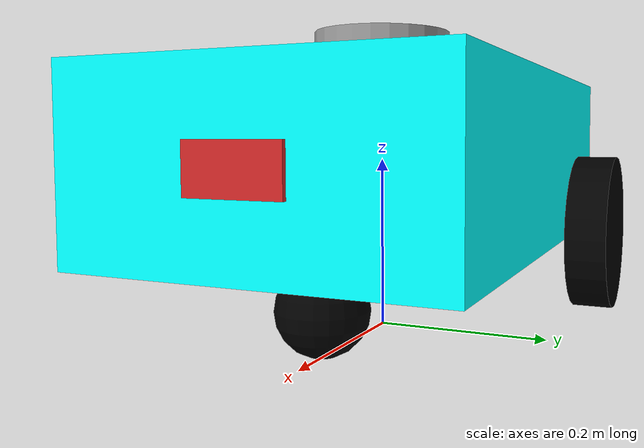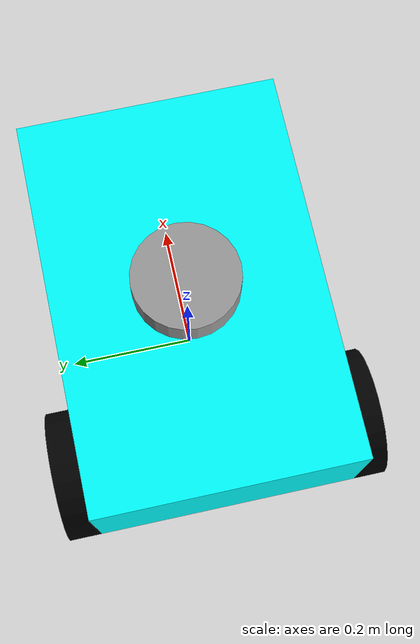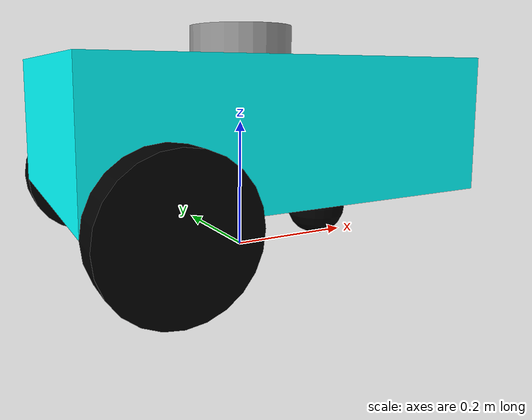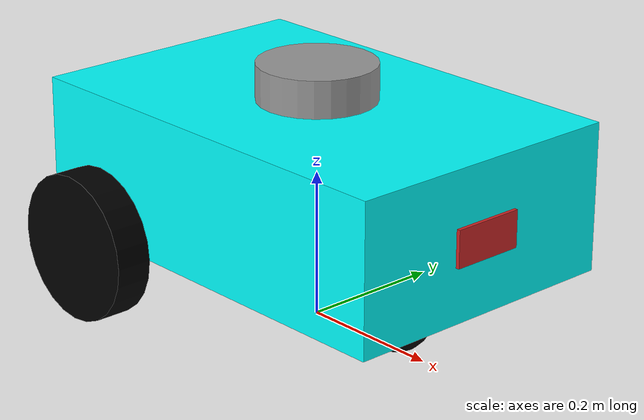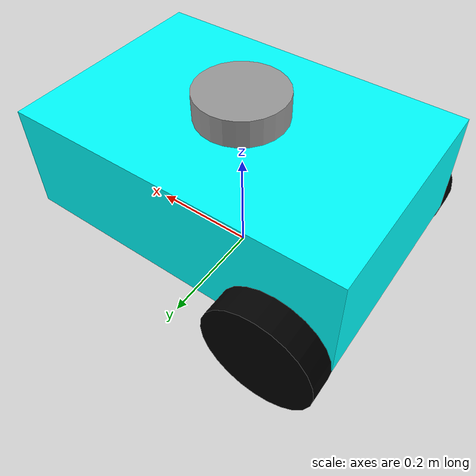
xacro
<?xml version="1.0"?>
<robot name="my_robot" xmlns:xacro = "http://www.ros.org/wiki/xacro" > <!-- xmlns:xacro = "http://www.ros.org/wiki/xacro>" kısmı xacro kullanabilmek için.-->

    <xacro:include filename="properties.xacro"/>
    <xacro:include filename="properties_gazebo.xacro"/>
    <xacro:include filename="camera.xacro"/>
    <xacro:include filename="lidar.xacro"/>
    <xacro:include filename="my_robot.xacro"/>

    <gazebo>
      <plugin name="gazebo_ros2_control" filename="libgazebo_ros2_control.so">
        <robot_param>robot_description</robot_param>
        <robot_param_node>robot_state_publisher</robot_param_node>
      </plugin>
    </gazebo>
</robot>

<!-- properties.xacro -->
<robot name="my_robot" xmlns:xacro = "http://www.ros.org/wiki/xacro" > <!-- xmlns:xacro = "http://www.ros.org/wiki/xacro>" kısmı xacro kullanabilmek için.-->

<material name="cyan">
        <color rgba="0 1 1 1"/>
    </material>
    <material name="black">
        <color rgba="0 0 0 1"/>
    </material>

</robot>

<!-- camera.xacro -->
<robot name="my_robot" xmlns:xacro = "http://www.ros.org/wiki/xacro" > <!-- xmlns:xacro = "http://www.ros.org/wiki/xacro>" kısmı xacro kullanabilmek için.-->

    <!-- === Fiziksel Parametreler === -->
    <xacro:property name="camera_width" value="0.01" />
    <xacro:property name="camera_lenght" value="0.1" />
    <xacro:property name="camera_height" value="0.05" />
    <xacro:property name="camera_mass" value="0.5" />

    <!-- === Atalet Momentleri (İnertial) Hesaplamaları === -->
    <!-- Dikdörtgen prizma için (camera) -->
    <xacro:property name="camera_ixx" value="${(1/12.0)*camera_mass*(camera_height*camera_height + camera_lenght*camera_lenght)}" />
    <xacro:property name="camera_iyy" value="${(1/12.0)*camera_mass*(camera_width*camera_width + camera_height*camera_height)}" />
    <xacro:property name="camera_izz" value="${(1/12.0)*camera_mass*(camera_width*camera_width + camera_lenght*camera_lenght)}" />

    <link name="camera_link">

        <inertial>
            <mass value="${camera_mass}" />
                <inertia ixx="${camera_ixx}" ixy="0.0" ixz="0.0" iyy="${camera_iyy}" iyz="0.0" izz="${camera_izz}" />
        </inertial>

        <visual>
            <geometry>
                <box size="${camera_width} ${camera_lenght} ${camera_height}"/>
            </geometry>
            <origin xyz="0.0 0.0 0.0" rpy="0.0 0.0 0.0"/>
            <material name="red" />
        </visual>

        <collision>
            <geometry>
                <box size="${camera_width} ${camera_lenght} ${camera_height}"/>
            </geometry>
            <origin xyz="0.0 0.0 0.0" rpy="0.0 0.0 0.0"/>
        </collision>

    </link>"

    <joint name="base_camera_joint" type="fixed">
        <parent link="base_link"/>
        <child link="camera_link"/>
        <origin xyz="0.3 0 0" rpy="0.0 0.0 0.0"/>
    </joint>

    <!--Şimdi eklediğimiz nesnenin kamera olduğunu gazeboya bildireceğiz.-->
    <gazebo reference = "camera_link">
        <material>Gazebo/Grey</material>
        <sensor name = "camera_sensor" type = "camera">
            <pose>0 0 0 0 0 0</pose> <!--x y z r p y değerlerini belirttik-->
            <visualize>true</visualize> <!--Çıktı görüp görmek istemediğimizi belirtiyoruz.-->
            <update_rate>10.0</update_rate> <!-- Kameranın güncellenme oranını ifade eder.-->

            <!--Default  Tanımlamalar.-->
            <plugin name = "camera_controller" filename = "libgazebo_ros_camera.so">
                <frame_name>camera_link</frame_name>
            </plugin>
        </sensor>

    </gazebo>
</robot>

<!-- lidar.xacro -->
<robot name="my_robot" xmlns:xacro = "http://www.ros.org/wiki/xacro" > <!-- xmlns:xacro = "http://www.ros.org/wiki/xacro>" kısmı xacro kullanabilmek için.-->

    <!-- === Fiziksel Parametreler === -->
    <xacro:property name="base_height" value="0.2" />

    <xacro:property name="lidar_radius" value="0.08" />
    <xacro:property name="lidar_lenght" value="0.05" />
    <xacro:property name="lidar_mass" value="0.2" />

    <!-- === Atalet Momentleri (İnertial) Hesaplamaları === -->
    <!-- Silindir için (lidar) -->
    <xacro:property name="lidar_ixx" value="${(1/12.0)*lidar_mass*(3*lidar_radius*lidar_radius + lidar_lenght*lidar_lenght)}" />
    <xacro:property name="lidar_iyy" value="${0.5*lidar_mass*lidar_radius*lidar_radius}" />
    <xacro:property name="lidar_izz" value="${(1/12.0)*lidar_mass*(3*lidar_radius*lidar_radius + lidar_lenght*lidar_lenght)}" />

    <link name="lidar_link">
        <inertial>
            <mass value="${lidar_mass}" />
            <inertia
                ixx="${lidar_ixx}" ixy="0.0" ixz="0.0"
                iyy="${lidar_iyy}" iyz="0.0" izz="${lidar_izz}" />
        </inertial>
        <visual>
            <geometry>
                <cylinder radius="${lidar_radius}" length="${lidar_lenght}"/>
            </geometry>
            <origin xyz="0.0 0.0 0.0" rpy="0 0.0  0.0"/>
            <material name="gray" />
        </visual>
        <collision>
            <geometry>
                <cylinder radius="${lidar_radius}" length="${lidar_lenght}"/>
            </geometry>
            <origin xyz="0.0 0.0 0.0" rpy="0 0.0  0.0"/>
        </collision>
    </link>

    <joint name="base_lidar_joint" type="fixed">
        <parent link="base_link"/>
        <child link="lidar_link"/>
        <origin xyz="0 0 ${base_height/2 + lidar_lenght/2}" rpy="0.0 0.0 0.0"/>
    </joint>

    <!--Şimdi eklediğimiz nesnenin kamera olduğunu gazeboya bildireceğiz.-->
    <gazebo reference = "lidar_link">
        <material>Gazebo/Grey</material>
        <sensor name = "lidar_sensor" type = "ray">
            <pose>0 0 0 0 0 0</pose> <!--x y z r p y değerlerini belirttik-->
            <visualize>true</visualize> <!--Çıktı görüp görmek istemediğimizi belirtiyoruz.-->
            <update_rate>10.0</update_rate> <!-- Kameranın güncellenme oranını ifade eder.-->

            <!--Lidar için yapmamız gereken spesifik tanımlamalar var onları yapacağız. -->
            <ray> <!--2 boyutlu lidarlar için geçerli değerler.-->
                <scan>
                    <horizontal>
                        <samples>720</samples>         <!-- Lazer ışını sayısı -->
                        <resolution>1</resolution>     <!-- Açısal çözünürlük -->
                        <min_angle>-3.14</min_angle> <!-- -90 derece -->
                        <max_angle>3.14</max_angle>  <!-- +90 derece -->
                    </horizontal>
                </scan>
                <range>
                    <min>0.1</min>                   <!-- Minimum ölçüm mesafesi -->
                    <max>30.0</max>                    <!-- Maksimum ölçüm mesafesi -->
                    <resolution>0.01</resolution>    <!-- Mesafe çözünürlüğü -->
                </range>
            </ray>

            <!--Default  Tanımlamalar.-->
            <plugin name="lidar" filename="libgazebo_ros_ray_sensor.so">
                <output_type>sensor_msgs/LaserScan</output_type>
                <ros>
                    <remapping>scan:=lidar/scan</remapping> <!-- topik adını sabitlersin -->
                </ros>
                <frame_name>lidar_link</frame_name> <!-- BU SATIR EKSİK! -->
            </plugin>
        </sensor>

    </gazebo>
</robot>

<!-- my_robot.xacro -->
<robot name="my_robot" xmlns:xacro="http://www.ros.org/wiki/xacro">

    <!-- === Fiziksel Parametreler === -->
    <xacro:property name="base_width" value="0.6" />
    <xacro:property name="base_lenght" value="0.4" />
    <xacro:property name="base_height" value="0.2" />
    <xacro:property name="base_mass" value="5" />

    <xacro:property name="wheel_radius" value="0.1" />
    <xacro:property name="wheel_lenght" value="0.05" />
    <xacro:property name="wheel_mass" value="1" />

    <xacro:property name="caster_wheel_radius" value="0.05" />
    <xacro:property name="caster_mass" value="1" />

    <!-- === Atalet Momentleri (İnertial) Hesaplamaları === -->
    <!-- Dikdörtgen prizma için (base) -->
    <xacro:property name="base_ixx" value="${(1/12.0)*base_mass*(base_height*base_height + base_lenght*base_lenght)}" />
    <xacro:property name="base_iyy" value="${(1/12.0)*base_mass*(base_width*base_width + base_height*base_height)}" />
    <xacro:property name="base_izz" value="${(1/12.0)*base_mass*(base_width*base_width + base_lenght*base_lenght)}" />

    <!-- Silindir için (wheel) -->
    <xacro:property name="wheel_ixx" value="${(1/12.0)*wheel_mass*(3*wheel_radius*wheel_radius + wheel_lenght*wheel_lenght)}" />
    <xacro:property name="wheel_iyy" value="${0.5*wheel_mass*wheel_radius*wheel_radius}" />
    <xacro:property name="wheel_izz" value="${(1/12.0)*wheel_mass*(3*wheel_radius*wheel_radius + wheel_lenght*wheel_lenght)}" />

    <!-- Küre için (caster wheel) -->
    <xacro:property name="caster_inertia" value="${(2/5.0)*caster_mass*caster_wheel_radius*caster_wheel_radius}" />

    <!-- === Tekerlek Makrosu === -->
    <xacro:macro name="wheel_link" params="prefix">
        <link name="${prefix}_wheel_link">
            <inertial>
                <mass value="${wheel_mass}" />
                <inertia
                    ixx="${wheel_ixx}" ixy="0.0" ixz="0.0"
                    iyy="${wheel_iyy}" iyz="0.0" izz="${wheel_izz}" />
            </inertial>
            <visual>
                <geometry>
                    <cylinder radius="${wheel_radius}" length="${wheel_lenght}"/>
                </geometry>
                <origin xyz="0.0 0.0 0.0" rpy="${pi/2} 0.0  0.0"/>
                <material name="black" />
            </visual>
            <collision>
                <geometry>
                    <cylinder radius="${wheel_radius}" length="${wheel_lenght}"/>
                </geometry>
                <origin xyz="0.0 0.0 0.0" rpy="${pi/2} 0.0  0.0"/>
                <material name="black" />
            </collision>
        </link>
    </xacro:macro>

    <!-- === Linkler === -->
    <link name="odom_link" />

    <link name="base_link">
        <inertial>
            <mass value="${base_mass}" />
            <inertia
                ixx="${base_ixx}" ixy="0.0" ixz="0.0"
                iyy="${base_iyy}" iyz="0.0" izz="${base_izz}" />
        </inertial>
        <visual>
            <geometry>
                <box size="${base_width} ${base_lenght} ${base_height}"/>
            </geometry>
            <origin xyz="0.0 0.0 0.0" rpy="0.0 0.0 0.0"/>
            <material name="cyan" />
        </visual>
        <collision>
            <geometry>
                <box size="${base_width} ${base_lenght} ${base_height}"/>
            </geometry>
            <origin xyz="0.0 0.0 0.0" rpy="0.0 0.0 0.0"/>
            <material name="cyan" />
        </collision>
    </link>

    <link name="caster_wheel_link">
        <inertial>
            <mass value="${caster_mass}" />
            <inertia
                ixx="${caster_inertia}" ixy="0.0" ixz="0.0"
                iyy="${caster_inertia}" iyz="0.0" izz="${caster_inertia}" />
        </inertial>
        <visual>
            <geometry>
                <sphere radius="${caster_wheel_radius}"/>
            </geometry>
            <origin xyz="0.0 0.0 0.0" rpy="0.0 0.0 0.0"/>
            <material name="black" />
        </visual>
        <collision>
            <geometry>
                <sphere radius="${caster_wheel_radius}"/>
            </geometry>
            <origin xyz="0.0 0.0 0.0" rpy="0.0 0.0 0.0"/>
            <material name="black" />
        </collision>
    </link>

    <xacro:wheel_link prefix = "right" />
    <xacro:wheel_link prefix = "left" />

    <!-- === Eklem Tanımları === -->
    <joint name="base_joint" type="fixed">
        <parent link="odom_link"/>
        <child link="base_link"/>
        <origin xyz="0 0 ${(base_height/2)+wheel_radius}" rpy="0.0 0.0 0.0"/>
    </joint>
    <joint name="base_right_wheel_joint" type="continuous">
        <parent link="base_link"/>
        <child link="right_wheel_link"/>
        <origin xyz="${-(base_width*2/6)} ${-( (base_lenght + wheel_lenght)/2)} ${-wheel_radius}" rpy="0.0 0.0 0.0"/>
        <axis xyz="0 1 0.0"/>
        <!-- Cismin hangi eksenlerde dönüşüne müsaade ettiğimiz.-->        <!--Duruş ayarlandıktan sonra bakıyoruz yeşil yani y ekseni etrafında dönmeli-->
        <limit lower="0.0" upper="0.0" effort="0.0" velocity="0.0"/>
    </joint>

    <joint name="base_left_wheel_joint" type="continuous">
        <parent link="base_link"/>
        <child link="left_wheel_link"/>
        <origin xyz="${-(base_width*2/6)} ${( (base_lenght + wheel_lenght)/2)} ${-wheel_radius}" rpy="0.0 0.0 0.0"/>
        <axis xyz="0 1 0.0"/>
        <!-- Cismin hangi eksenlerde dönüşüne müsaade ettiğimiz.-->        <!--Duruş ayarlandıktan sonra bakıyoruz yeşil yani y ekseni etrafında dönmeli-->
        <limit lower="0.0" upper="0.0" effort="0.0" velocity="0.0"/>
    </joint>

    <joint name="base_caster_wheel_joint" type="fixed">
        <parent link="base_link"/>
        <child link="caster_wheel_link"/>
        <origin xyz="${base_width/4} 0 ${-(base_height/2 + caster_wheel_radius)}" rpy="0.0 0.0 0.0"/>
    </joint>
</robot>
